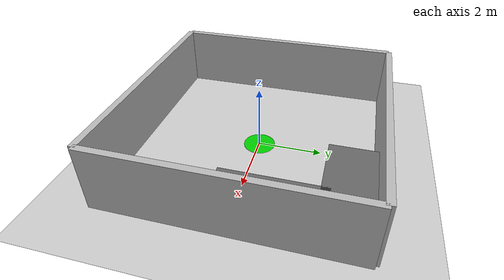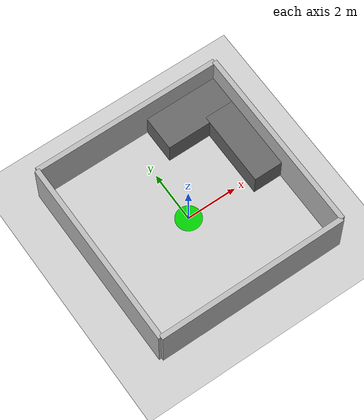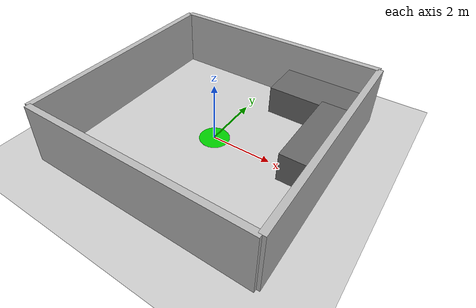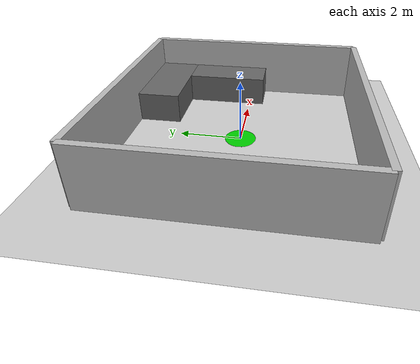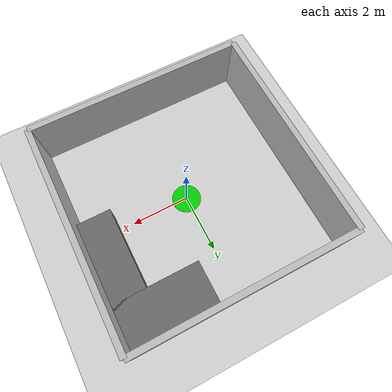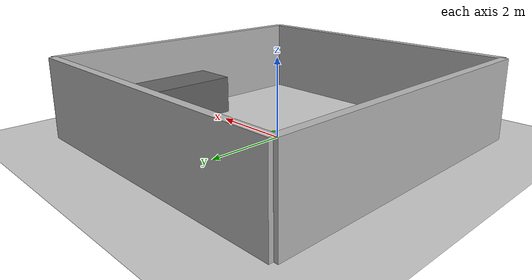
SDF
<sdf version="1.8">
 <world name="smartbin_world">
  <physics name="1ms" type="ignored">
   <max_step_size>0.001</max_step_size>
   <real_time_factor>1.0</real_time_factor>
  </physics>
  <plugin filename="gz-sim-physics-system" name="gz::sim::systems::Physics"/>
  <plugin filename="gz-sim-user-commands-system" name="gz::sim::systems::UserCommands"/>
  <plugin filename="gz-sim-scene-broadcaster-system" name="gz::sim::systems::SceneBroadcaster"/>
  <plugin filename="gz-sim-sensors-system" name="gz::sim::systems::Sensors">
   <render_engine>ogre2</render_engine>
  </plugin>
  <light type="directional" name="sun">
   <pose>0 0 10 0 0 0</pose>
   <diffuse>0.8 0.8 0.8 1</diffuse>
   <specular>0.2 0.2 0.2 1</specular>
   <attenuation>
    <range>1000</range>
    <constant>0.9</constant>
    <linear>0.01</linear>
    <quadratic>0.001</quadratic>
   </attenuation>
   <direction>0.5 0.1 -0.9</direction>
  </light>
  <model name="ground_plane">
   <static>true</static>
   <link name="link">
    <collision name="collision">
     <geometry><plane><normal>0 0 1</normal><size>100 100</size></plane></geometry>
    </collision>
    <visual name="visual">
     <geometry><plane><normal>0 0 1</normal><size>100 100</size></plane></geometry>
     <material>
      <ambient>0.8 0.8 0.8 1</ambient>
      <diffuse>0.8 0.8 0.8 1</diffuse>
      <specular>0.8 0.8 0.8 1</specular>
     </material>
    </visual>
   </link>
  </model>
  <model name="room_walls">
   <static>true</static>
   <link name="north_wall">
    <pose>0 3.75 1 0 0 0</pose>
    <collision name="collision"><geometry><box><size>7.5 0.2 2</size></box></geometry></collision>
    <visual name="visual"><geometry><box><size>7.5 0.2 2</size></box></geometry></visual>
   </link>
   <link name="south_wall">
    <pose>0 -3.75 1 0 0 0</pose>
    <collision name="collision"><geometry><box><size>7.5 0.2 2</size></box></geometry></collision>
    <visual name="visual"><geometry><box><size>7.5 0.2 2</size></box></geometry></visual>
   </link>
   <link name="east_wall">
    <pose>3.75 0 1 0 0 0</pose>
    <collision name="collision"><geometry><box><size>0.2 7.5 2</size></box></geometry></collision>
    <visual name="visual"><geometry><box><size>0.2 7.5 2</size></box></geometry></visual>
   </link>
   <link name="west_wall">
    <pose>-3.75 0 1 0 0 0</pose>
    <collision name="collision"><geometry><box><size>0.2 7.5 2</size></box></geometry></collision>
    <visual name="visual"><geometry><box><size>0.2 7.5 2</size></box></geometry></visual>
   </link>
  </model>
  <model name="countertops">
   <static>true</static>
   <link name="north_countertop">
    <pose>2.25 3.0 0.5 0 0 0</pose>
    <collision name="collision"><geometry><box><size>3 1.5 1</size></box></geometry></collision>
    <visual name="visual">
     <geometry><box><size>3 1.5 1</size></box></geometry>
     <material>
      <ambient>0.4 0.4 0.4 1</ambient>
      <diffuse>0.4 0.4 0.4 1</diffuse>
      <specular>0.4 0.4 0.4 1</specular>
     </material>
    </visual>
   </link>
   <link name="east_countertop">
    <pose>3.125 1 0.5 0 0 1.57</pose>
    <collision name="collision"><geometry><box><size>3 1.25 1</size></box></geometry></collision>
    <visual name="visual">
     <geometry><box><size>3 1.25 1</size></box></geometry>
     <material>
      <ambient>0.4 0.4 0.4 1</ambient>
      <diffuse>0.4 0.4 0.4 1</diffuse>
      <specular>0.4 0.4 0.4 1</specular>
     </material>
    </visual>
   </link>
  </model>
  <model name="home_position">
   <static>true</static>
   <pose>0 0 0.001 0 0 0</pose>
   <link name="link">
    <visual name="visual">
     <geometry><cylinder><radius>0.5</radius><length>0.001</length></cylinder></geometry>
     <material>
      <ambient>0.0 0.8 0.0 1</ambient>
      <diffuse>0.0 0.8 0.0 1</diffuse>
      <specular>0.0 0.8 0.0 1</specular>
     </material>
    </visual>
   </link>
  </model>
 </world>
</sdf>
